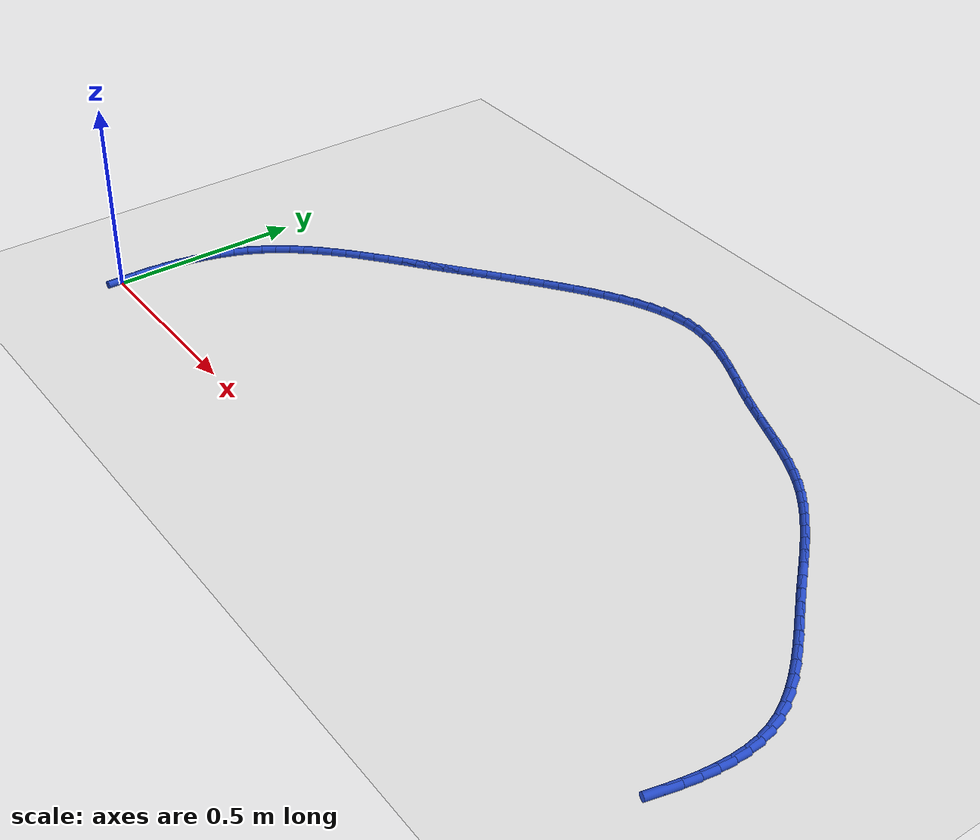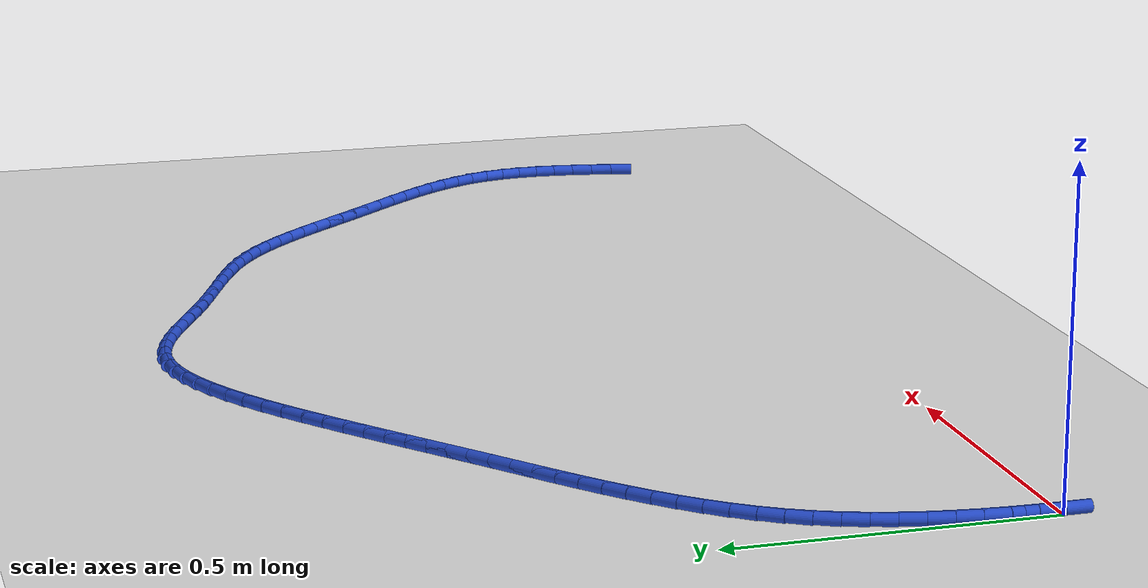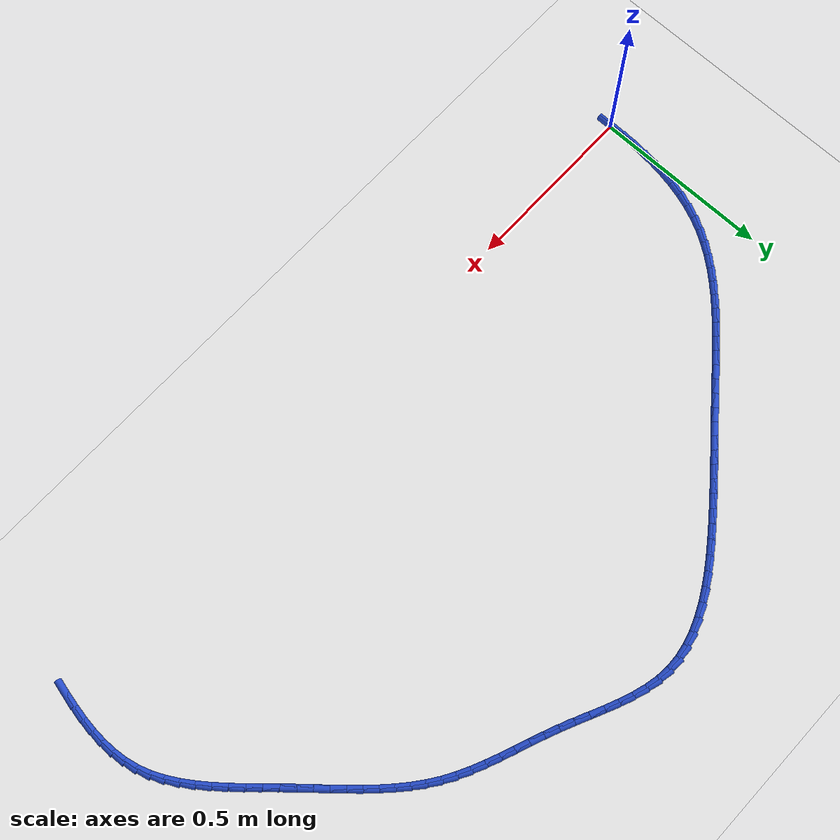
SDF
<sdf version="1.6">
 <world name="default">
  <model name="ground_plane">
   <static>1</static>
   <link name="link">
    <collision name="collision">
     <geometry><plane><normal>0 0 1</normal><size>100 100</size></plane></geometry>
     <surface><friction><ode><mu>100</mu><mu2>50</mu2></ode></friction></surface>
    </collision>
    <visual name="visual">
     <cast_shadows>0</cast_shadows>
     <geometry><plane><normal>0 0 1</normal><size>100 100</size></plane></geometry>
     <material>
      <script><uri>file://media/materials/scripts/gazebo.material</uri><name>Gazebo/WhiteGlow</name></script>
     </material>
    </visual>
   </link>
  </model>
  <model name="line">
   <link name="link_0">
    <pose>6.938893903907228e-18 -4.163336342344337e-17 0.01 0 1.57 -1.5676916101894538</pose>
    <collision name="collision">
     <geometry><cylinder><radius>0.01</radius><length>0.08</length></cylinder></geometry>
    </collision>
    <visual name="visual">
     <material>
      <script><name>Gazebo/Blue</name><uri>file://media/materials/scripts/gazebo.material</uri></script>
     </material>
     <geometry><cylinder><radius>0.01</radius><length>0.08</length></cylinder></geometry>
    </visual>
   </link>
   <link name="link_1">
    <pose>-0.0001240107535705233 0.03994256831536844 0.01 0 1.57 1.5407684090416927</pose>
    <collision name="collision">
     <geometry><cylinder><radius>0.01</radius><length>0.08</length></cylinder></geometry>
    </collision>
    <visual name="visual">
     <material>
      <script><name>Gazebo/Blue</name><uri>file://media/materials/scripts/gazebo.material</uri></script>
     </material>
     <geometry><cylinder><radius>0.01</radius><length>0.08</length></cylinder></geometry>
    </visual>
   </link>
   <link name="link_2">
    <pose>0.0010758056912176992 0.07988725638194097 0.01 0 1.57 1.5035129609177584</pose>
    <collision name="collision">
     <geometry><cylinder><radius>0.01</radius><length>0.08</length></cylinder></geometry>
    </collision>
    <visual name="visual">
     <material>
      <script><name>Gazebo/Blue</name><uri>file://media/materials/scripts/gazebo.material</uri></script>
     </material>
     <geometry><cylinder><radius>0.01</radius><length>0.08</length></cylinder></geometry>
    </visual>
   </link>
   <link name="link_3">
    <pose>0.0037561358894148238 0.11966357074974701 0.01 0 1.57 1.461752647181606</pose>
    <collision name="collision">
     <geometry><cylinder><radius>0.01</radius><length>0.08</length></cylinder></geometry>
    </collision>
    <visual name="visual">
     <material>
      <script><name>Gazebo/Blue</name><uri>file://media/materials/scripts/gazebo.material</uri></script>
     </material>
     <geometry><cylinder><radius>0.01</radius><length>0.08</length></cylinder></geometry>
    </visual>
   </link>
   <link name="link_4">
    <pose>0.008073666396071 0.15910101796881604 0.01 0 1.57 1.415074869230866</pose>
    <collision name="collision">
     <geometry><cylinder><radius>0.01</radius><length>0.08</length></cylinder></geometry>
    </collision>
    <visual name="visual">
     <material>
      <script><name>Gazebo/Blue</name><uri>file://media/materials/scripts/gazebo.material</uri></script>
     </material>
     <geometry><cylinder><radius>0.01</radius><length>0.08</length></cylinder></geometry>
    </visual>
   </link>
   <link name="link_5">
    <pose>0.014185083766236384 0.1980291045891775 0.01 0 1.57 1.3630564859032588</pose>
    <collision name="collision">
     <geometry><cylinder><radius>0.01</radius><length>0.08</length></cylinder></geometry>
    </collision>
    <visual name="visual">
     <material>
      <script><name>Gazebo/Blue</name><uri>file://media/materials/scripts/gazebo.material</uri></script>
     </material>
     <geometry><cylinder><radius>0.01</radius><length>0.08</length></cylinder></geometry>
    </visual>
   </link>
   <link name="link_6">
    <pose>0.022247074554961117 0.23627733716086088 0.01 0 1.57 1.3052953716062183</pose>
    <collision name="collision">
     <geometry><cylinder><radius>0.01</radius><length>0.08</length></cylinder></geometry>
    </collision>
    <visual name="visual">
     <material>
      <script><name>Gazebo/Blue</name><uri>file://media/materials/scripts/gazebo.material</uri></script>
     </material>
     <geometry><cylinder><radius>0.01</radius><length>0.08</length></cylinder></geometry>
    </visual>
   </link>
   <link name="link_7">
    <pose>0.03241632531729535 0.2736752222338956 0.01 0 1.57 1.2414569505692037</pose>
    <collision name="collision">
     <geometry><cylinder><radius>0.01</radius><length>0.08</length></cylinder></geometry>
    </collision>
    <visual name="visual">
     <material>
      <script><name>Gazebo/Blue</name><uri>file://media/materials/scripts/gazebo.material</uri></script>
     </material>
     <geometry><cylinder><radius>0.01</radius><length>0.08</length></cylinder></geometry>
    </visual>
   </link>
   <link name="link_8">
    <pose>0.04484952260828924 0.3100522663583111 0.01 0 1.57 1.1713377148081576</pose>
    <collision name="collision">
     <geometry><cylinder><radius>0.01</radius><length>0.08</length></cylinder></geometry>
    </collision>
    <visual name="visual">
     <material>
      <script><name>Gazebo/Blue</name><uri>file://media/materials/scripts/gazebo.material</uri></script>
     </material>
     <geometry><cylinder><radius>0.01</radius><length>0.08</length></cylinder></geometry>
    </visual>
   </link>
   <link name="link_9">
    <pose>0.05970335298299293 0.34523797608413687 0.01 0 1.57 1.095269995409736</pose>
    <collision name="collision">
     <geometry><cylinder><radius>0.01</radius><length>0.08</length></cylinder></geometry>
    </collision>
    <visual name="visual">
     <material>
      <script><name>Gazebo/Blue</name><uri>file://media/materials/scripts/gazebo.material</uri></script>
     </material>
     <geometry><cylinder><radius>0.01</radius><length>0.08</length></cylinder></geometry>
    </visual>
   </link>
   <link name="link_10">
    <pose>0.0771241366133853 0.37906882463720026 0.01 0 1.57 1.0200724143829145</pose>
    <collision name="collision">
     <geometry><cylinder><radius>0.01</radius><length>0.08</length></cylinder></geometry>
    </collision>
    <visual name="visual">
     <material>
      <script><name>Gazebo/Blue</name><uri>file://media/materials/scripts/gazebo.material</uri></script>
     </material>
     <geometry><cylinder><radius>0.01</radius><length>0.08</length></cylinder></geometry>
    </visual>
   </link>
   <link name="link_11">
    <pose>0.09705226196215008 0.41151968061665506 0.01 0 1.57 0.952246324544067</pose>
    <collision name="collision">
     <geometry><cylinder><radius>0.01</radius><length>0.08</length></cylinder></geometry>
    </collision>
    <visual name="visual">
     <material>
      <script><name>Gazebo/Blue</name><uri>file://media/materials/scripts/gazebo.material</uri></script>
     </material>
     <geometry><cylinder><radius>0.01</radius><length>0.08</length></cylinder></geometry>
    </visual>
   </link>
   <link name="link_12">
    <pose>0.11923876802224577 0.44269266398396984 0.01 0 1.57 0.8922600517610706</pose>
    <collision name="collision">
     <geometry><cylinder><radius>0.01</radius><length>0.08</length></cylinder></geometry>
    </collision>
    <visual name="visual">
     <material>
      <script><name>Gazebo/Blue</name><uri>file://media/materials/scripts/gazebo.material</uri></script>
     </material>
     <geometry><cylinder><radius>0.01</radius><length>0.08</length></cylinder></geometry>
    </visual>
   </link>
   <link name="link_13">
    <pose>0.14342765118021208 0.4726946276489668 0.01 0 1.57 0.8400615878281157</pose>
    <collision name="collision">
     <geometry><cylinder><radius>0.01</radius><length>0.08</length></cylinder></geometry>
    </collision>
    <visual name="visual">
     <material>
      <script><name>Gazebo/Blue</name><uri>file://media/materials/scripts/gazebo.material</uri></script>
     </material>
     <geometry><cylinder><radius>0.01</radius><length>0.08</length></cylinder></geometry>
    </visual>
   </link>
   <link name="link_14">
    <pose>0.16936290782258875 0.501632424521469 0.01 0 1.57 0.7954121841297949</pose>
    <collision name="collision">
     <geometry><cylinder><radius>0.01</radius><length>0.08</length></cylinder></geometry>
    </collision>
    <visual name="visual">
     <material>
      <script><name>Gazebo/Blue</name><uri>file://media/materials/scripts/gazebo.material</uri></script>
     </material>
     <geometry><cylinder><radius>0.01</radius><length>0.08</length></cylinder></geometry>
    </visual>
   </link>
   <link name="link_15">
    <pose>0.19678853433591553 0.5296129075112985 0.01 0 1.57 0.757981296980702</pose>
    <collision name="collision">
     <geometry><cylinder><radius>0.01</radius><length>0.08</length></cylinder></geometry>
    </collision>
    <visual name="visual">
     <material>
      <script><name>Gazebo/Blue</name><uri>file://media/materials/scripts/gazebo.material</uri></script>
     </material>
     <geometry><cylinder><radius>0.01</radius><length>0.08</length></cylinder></geometry>
    </visual>
   </link>
   <link name="link_16">
    <pose>0.22544852710673227 0.5567429295282782 0.01 0 1.57 0.727418510321917</pose>
    <collision name="collision">
     <geometry><cylinder><radius>0.01</radius><length>0.08</length></cylinder></geometry>
    </collision>
    <visual name="visual">
     <material>
      <script><name>Gazebo/Blue</name><uri>file://media/materials/scripts/gazebo.material</uri></script>
     </material>
     <geometry><cylinder><radius>0.01</radius><length>0.08</length></cylinder></geometry>
    </visual>
   </link>
   <link name="link_17">
    <pose>0.25508688252157874 0.5831293434822304 0.01 0 1.57 0.7034040983549662</pose>
    <collision name="collision">
     <geometry><cylinder><radius>0.01</radius><length>0.08</length></cylinder></geometry>
    </collision>
    <visual name="visual">
     <material>
      <script><name>Gazebo/Blue</name><uri>file://media/materials/scripts/gazebo.material</uri></script>
     </material>
     <geometry><cylinder><radius>0.01</radius><length>0.08</length></cylinder></geometry>
    </visual>
   </link>
   <link name="link_18">
    <pose>0.28544759696699434 0.6088790022829775 0.01 0 1.57 0.68568303896378</pose>
    <collision name="collision">
     <geometry><cylinder><radius>0.01</radius><length>0.08</length></cylinder></geometry>
    </collision>
    <visual name="visual">
     <material>
      <script><name>Gazebo/Blue</name><uri>file://media/materials/scripts/gazebo.material</uri></script>
     </material>
     <geometry><cylinder><radius>0.01</radius><length>0.08</length></cylinder></geometry>
    </visual>
   </link>
   <link name="link_19">
    <pose>0.31627466682951927 0.6340987588403424 0.01 0 1.57 0.674087767909182</pose>
    <collision name="collision">
     <geometry><cylinder><radius>0.01</radius><length>0.08</length></cylinder></geometry>
    </collision>
    <visual name="visual">
     <material>
      <script><name>Gazebo/Blue</name><uri>file://media/materials/scripts/gazebo.material</uri></script>
     </material>
     <geometry><cylinder><radius>0.01</radius><length>0.08</length></cylinder></geometry>
    </visual>
   </link>
   <link name="link_20">
    <pose>0.34731208849569317 0.6588954660641475 0.01 0 1.57 0.6685542135678278</pose>
    <collision name="collision">
     <geometry><cylinder><radius>0.01</radius><length>0.08</length></cylinder></geometry>
    </collision>
    <visual name="visual">
     <material>
      <script><name>Gazebo/Blue</name><uri>file://media/materials/scripts/gazebo.material</uri></script>
     </material>
     <geometry><cylinder><radius>0.01</radius><length>0.08</length></cylinder></geometry>
    </visual>
   </link>
   <link name="link_21">
    <pose>0.3783038583520557 0.6833759768642154 0.01 0 1.57 0.6691236972101293</pose>
    <collision name="collision">
     <geometry><cylinder><radius>0.01</radius><length>0.08</length></cylinder></geometry>
    </collision>
    <visual name="visual">
     <material>
      <script><name>Gazebo/Blue</name><uri>file://media/materials/scripts/gazebo.material</uri></script>
     </material>
     <geometry><cylinder><radius>0.01</radius><length>0.08</length></cylinder></geometry>
    </visual>
   </link>
   <link name="link_22">
    <pose>0.4089945331427164 0.7076470474561677 0.01 0 1.57 0.673648050897429</pose>
    <collision name="collision">
     <geometry><cylinder><radius>0.01</radius><length>0.08</length></cylinder></geometry>
    </collision>
    <visual name="visual">
     <material>
      <script><name>Gazebo/Blue</name><uri>file://media/materials/scripts/gazebo.material</uri></script>
     </material>
     <geometry><cylinder><radius>0.01</radius><length>0.08</length></cylinder></geometry>
    </visual>
   </link>
   <link name="link_23">
    <pose>0.43924717477919306 0.7317949850369222 0.01 0 1.57 0.677016995341679</pose>
    <collision name="collision">
     <geometry><cylinder><radius>0.01</radius><length>0.08</length></cylinder></geometry>
    </collision>
    <visual name="visual">
     <material>
      <script><name>Gazebo/Blue</name><uri>file://media/materials/scripts/gazebo.material</uri></script>
     </material>
     <geometry><cylinder><radius>0.01</radius><length>0.08</length></cylinder></geometry>
    </visual>
   </link>
   <link name="link_24">
    <pose>0.46918910326626423 0.7558604969463605 0.01 0 1.57 0.6784589051195975</pose>
    <collision name="collision">
     <geometry><cylinder><radius>0.01</radius><length>0.08</length></cylinder></geometry>
    </collision>
    <visual name="visual">
     <material>
      <script><name>Gazebo/Blue</name><uri>file://media/materials/scripts/gazebo.material</uri></script>
     </material>
     <geometry><cylinder><radius>0.01</radius><length>0.08</length></cylinder></geometry>
    </visual>
   </link>
   <link name="link_25">
    <pose>0.49898337237274504 0.7798781243762949 0.01 0 1.57 0.6779350442786455</pose>
    <collision name="collision">
     <geometry><cylinder><radius>0.01</radius><length>0.08</length></cylinder></geometry>
    </collision>
    <visual name="visual">
     <material>
      <script><name>Gazebo/Blue</name><uri>file://media/materials/scripts/gazebo.material</uri></script>
     </material>
     <geometry><cylinder><radius>0.01</radius><length>0.08</length></cylinder></geometry>
    </visual>
   </link>
   <link name="link_26">
    <pose>0.5287930358674504 0.8038824085185382 0.01 0 1.57 0.6754520535355876</pose>
    <collision name="collision">
     <geometry><cylinder><radius>0.01</radius><length>0.08</length></cylinder></geometry>
    </collision>
    <visual name="visual">
     <material>
      <script><name>Gazebo/Blue</name><uri>file://media/materials/scripts/gazebo.material</uri></script>
     </material>
     <geometry><cylinder><radius>0.01</radius><length>0.08</length></cylinder></geometry>
    </visual>
   </link>
   <link name="link_27">
    <pose>0.5587811475191954 0.8279078905649029 0.01 0 1.57 0.6710617325631127</pose>
    <collision name="collision">
     <geometry><cylinder><radius>0.01</radius><length>0.08</length></cylinder></geometry>
    </collision>
    <visual name="visual">
     <material>
      <script><name>Gazebo/Blue</name><uri>file://media/materials/scripts/gazebo.material</uri></script>
     </material>
     <geometry><cylinder><radius>0.01</radius><length>0.08</length></cylinder></geometry>
    </visual>
   </link>
   <link name="link_28">
    <pose>0.5891107610967954 0.8519891117072016 0.01 0 1.57 0.6648584566163249</pose>
    <collision name="collision">
     <geometry><cylinder><radius>0.01</radius><length>0.08</length></cylinder></geometry>
    </collision>
    <visual name="visual">
     <material>
      <script><name>Gazebo/Blue</name><uri>file://media/materials/scripts/gazebo.material</uri></script>
     </material>
     <geometry><cylinder><radius>0.01</radius><length>0.08</length></cylinder></geometry>
    </visual>
   </link>
   <link name="link_29">
    <pose>0.6199449303690652 0.8761606131372471 0.01 0 1.57 0.6569744422796842</pose>
    <collision name="collision">
     <geometry><cylinder><radius>0.01</radius><length>0.08</length></cylinder></geometry>
    </collision>
    <visual name="visual">
     <material>
      <script><name>Gazebo/Blue</name><uri>file://media/materials/scripts/gazebo.material</uri></script>
     </material>
     <geometry><cylinder><radius>0.01</radius><length>0.08</length></cylinder></geometry>
    </visual>
   </link>
   <link name="link_30">
    <pose>0.6514467091048195 0.9004569360468514 0.01 0 1.57 0.6474209578376263</pose>
    <collision name="collision">
     <geometry><cylinder><radius>0.01</radius><length>0.08</length></cylinder></geometry>
    </collision>
    <visual name="visual">
     <material>
      <script><name>Gazebo/Blue</name><uri>file://media/materials/scripts/gazebo.material</uri></script>
     </material>
     <geometry><cylinder><radius>0.01</radius><length>0.08</length></cylinder></geometry>
    </visual>
   </link>
   <link name="link_31">
    <pose>0.6837731962474867 0.9249003783235316 0.01 0 1.57 0.6331195395096945</pose>
    <collision name="collision">
     <geometry><cylinder><radius>0.01</radius><length>0.08</length></cylinder></geometry>
    </collision>
    <visual name="visual">
     <material>
      <script><name>Gazebo/Blue</name><uri>file://media/materials/scripts/gazebo.material</uri></script>
     </material>
     <geometry><cylinder><radius>0.01</radius><length>0.08</length></cylinder></geometry>
    </visual>
   </link>
   <link name="link_32">
    <pose>0.7169545861808617 0.9492523181738578 0.01 0 1.57 0.6109323411636277</pose>
    <collision name="collision">
     <geometry><cylinder><radius>0.01</radius><length>0.08</length></cylinder></geometry>
    </collision>
    <visual name="visual">
     <material>
      <script><name>Gazebo/Blue</name><uri>file://media/materials/scripts/gazebo.material</uri></script>
     </material>
     <geometry><cylinder><radius>0.01</radius><length>0.08</length></cylinder></geometry>
    </visual>
   </link>
   <link name="link_33">
    <pose>0.7508995162889793 0.9730242088711587 0.01 0 1.57 0.580331755530792</pose>
    <collision name="collision">
     <geometry><cylinder><radius>0.01</radius><length>0.08</length></cylinder></geometry>
    </collision>
    <visual name="visual">
     <material>
      <script><name>Gazebo/Blue</name><uri>file://media/materials/scripts/gazebo.material</uri></script>
     </material>
     <geometry><cylinder><radius>0.01</radius><length>0.08</length></cylinder></geometry>
    </visual>
   </link>
   <link name="link_34">
    <pose>0.7855117392639189 0.9957174606117435 0.01 0 1.57 0.5405461772761361</pose>
    <collision name="collision">
     <geometry><cylinder><radius>0.01</radius><length>0.08</length></cylinder></geometry>
    </collision>
    <visual name="visual">
     <material>
      <script><name>Gazebo/Blue</name><uri>file://media/materials/scripts/gazebo.material</uri></script>
     </material>
     <geometry><cylinder><radius>0.01</radius><length>0.08</length></cylinder></geometry>
    </visual>
   </link>
   <link name="link_35">
    <pose>0.820695007797759 1.0168334835919195 0.01 0 1.57 0.4904499565831554</pose>
    <collision name="collision">
     <geometry><cylinder><radius>0.01</radius><length>0.08</length></cylinder></geometry>
    </collision>
    <visual name="visual">
     <material>
      <script><name>Gazebo/Blue</name><uri>file://media/materials/scripts/gazebo.material</uri></script>
     </material>
     <geometry><cylinder><radius>0.01</radius><length>0.08</length></cylinder></geometry>
    </visual>
   </link>
   <link name="link_36">
    <pose>0.8563530745825789 1.0358736880079955 0.01 0 1.57 0.42859240694661394</pose>
    <collision name="collision">
     <geometry><cylinder><radius>0.01</radius><length>0.08</length></cylinder></geometry>
    </collision>
    <visual name="visual">
     <material>
      <script><name>Gazebo/Blue</name><uri>file://media/materials/scripts/gazebo.material</uri></script>
     </material>
     <geometry><cylinder><radius>0.01</radius><length>0.08</length></cylinder></geometry>
    </visual>
   </link>
   <link name="link_37">
    <pose>0.8923896923104576 1.05233948405628 0.01 0 1.57 0.35328473260305254</pose>
    <collision name="collision">
     <geometry><cylinder><radius>0.01</radius><length>0.08</length></cylinder></geometry>
    </collision>
    <visual name="visual">
     <material>
      <script><name>Gazebo/Blue</name><uri>file://media/materials/scripts/gazebo.material</uri></script>
     </material>
     <geometry><cylinder><radius>0.01</radius><length>0.08</length></cylinder></geometry>
    </visual>
   </link>
   <link name="link_38">
    <pose>0.9287086136734736 1.0657322819330808 0.01 0 1.57 0.2628145662707853</pose>
    <collision name="collision">
     <geometry><cylinder><radius>0.01</radius><length>0.08</length></cylinder></geometry>
    </collision>
    <visual name="visual">
     <material>
      <script><name>Gazebo/Blue</name><uri>file://media/materials/scripts/gazebo.material</uri></script>
     </material>
     <geometry><cylinder><radius>0.01</radius><length>0.08</length></cylinder></geometry>
    </visual>
   </link>
   <link name="link_39">
    <pose>0.9652135913637067 1.0755534918347063 0.01 0 1.57 0.15587947604825492</pose>
    <collision name="collision">
     <geometry><cylinder><radius>0.01</radius><length>0.08</length></cylinder></geometry>
    </collision>
    <visual name="visual">
     <material>
      <script><name>Gazebo/Blue</name><uri>file://media/materials/scripts/gazebo.material</uri></script>
     </material>
     <geometry><cylinder><radius>0.01</radius><length>0.08</length></cylinder></geometry>
    </visual>
   </link>
   <link name="link_40">
    <pose>1.0018083780732354 1.0813045239574648 0.01 0 1.57 0.032301357666598744</pose>
    <collision name="collision">
     <geometry><cylinder><radius>0.01</radius><length>0.08</length></cylinder></geometry>
    </collision>
    <visual name="visual">
     <material>
      <script><name>Gazebo/Blue</name><uri>file://media/materials/scripts/gazebo.material</uri></script>
     </material>
     <geometry><cylinder><radius>0.01</radius><length>0.08</length></cylinder></geometry>
    </visual>
   </link>
   <link name="link_41">
    <pose>1.0383967264941383 1.0824867884976643 0.01 0 1.57 -0.10108205714212606</pose>
    <collision name="collision">
     <geometry><cylinder><radius>0.01</radius><length>0.08</length></cylinder></geometry>
    </collision>
    <visual name="visual">
     <material>
      <script><name>Gazebo/Blue</name><uri>file://media/materials/scripts/gazebo.material</uri></script>
     </material>
     <geometry><cylinder><radius>0.01</radius><length>0.08</length></cylinder></geometry>
    </visual>
   </link>
   <link name="link_42">
    <pose>1.0749014130056576 1.078784200592612 0.01 0 1.57 -0.2168176558800977</pose>
    <collision name="collision">
     <geometry><cylinder><radius>0.01</radius><length>0.08</length></cylinder></geometry>
    </collision>
    <visual name="visual">
     <material>
      <script><name>Gazebo/Blue</name><uri>file://media/materials/scripts/gazebo.material</uri></script>
     </material>
     <geometry><cylinder><radius>0.01</radius><length>0.08</length></cylinder></geometry>
    </visual>
   </link>
   <link name="link_43">
    <pose>1.11133668697493 1.070758227250425 0.01 0 1.57 -0.3065613332785043</pose>
    <collision name="collision">
     <geometry><cylinder><radius>0.01</radius><length>0.08</length></cylinder></geometry>
    </collision>
    <visual name="visual">
     <material>
      <script><name>Gazebo/Blue</name><uri>file://media/materials/scripts/gazebo.material</uri></script>
     </material>
     <geometry><cylinder><radius>0.01</radius><length>0.08</length></cylinder></geometry>
    </visual>
   </link>
   <link name="link_44">
    <pose>1.1477442572084502 1.0592337693402194 0.01 0 1.57 -0.37170293703911716</pose>
    <collision name="collision">
     <geometry><cylinder><radius>0.01</radius><length>0.08</length></cylinder></geometry>
    </collision>
    <visual name="visual">
     <material>
      <script><name>Gazebo/Blue</name><uri>file://media/materials/scripts/gazebo.material</uri></script>
     </material>
     <geometry><cylinder><radius>0.01</radius><length>0.08</length></cylinder></geometry>
    </visual>
   </link>
   <link name="link_45">
    <pose>1.1841658377890667 1.045035778350141 0.01 0 1.57 -0.41442782550386414</pose>
    <collision name="collision">
     <geometry><cylinder><radius>0.01</radius><length>0.08</length></cylinder></geometry>
    </collision>
    <visual name="visual">
     <material>
      <script><name>Gazebo/Blue</name><uri>file://media/materials/scripts/gazebo.material</uri></script>
     </material>
     <geometry><cylinder><radius>0.01</radius><length>0.08</length></cylinder></geometry>
    </visual>
   </link>
   <link name="link_46">
    <pose>1.2206431427996258 1.028989205768336 0.01 0 1.57 -0.43667181638576197</pose>
    <collision name="collision">
     <geometry><cylinder><radius>0.01</radius><length>0.08</length></cylinder></geometry>
    </collision>
    <visual name="visual">
     <material>
      <script><name>Gazebo/Blue</name><uri>file://media/materials/scripts/gazebo.material</uri></script>
     </material>
     <geometry><cylinder><radius>0.01</radius><length>0.08</length></cylinder></geometry>
    </visual>
   </link>
   <link name="link_47">
    <pose>1.2572178863229766 1.0119190030829506 0.01 0 1.57 -0.43965867992340646</pose>
    <collision name="collision">
     <geometry><cylinder><radius>0.01</radius><length>0.08</length></cylinder></geometry>
    </collision>
    <visual name="visual">
     <material>
      <script><name>Gazebo/Blue</name><uri>file://media/materials/scripts/gazebo.material</uri></script>
     </material>
     <geometry><cylinder><radius>0.01</radius><length>0.08</length></cylinder></geometry>
    </visual>
   </link>
   <link name="link_48">
    <pose>1.2939317824419656 0.9946501217821306 0.01 0 1.57 -0.42378051686365903</pose>
    <collision name="collision">
     <geometry><cylinder><radius>0.01</radius><length>0.08</length></cylinder></geometry>
    </collision>
    <visual name="visual">
     <material>
      <script><name>Gazebo/Blue</name><uri>file://media/materials/scripts/gazebo.material</uri></script>
     </material>
     <geometry><cylinder><radius>0.01</radius><length>0.08</length></cylinder></geometry>
    </visual>
   </link>
   <link name="link_49">
    <pose>1.3308263294866667 0.9780064496123787 0.01 0 1.57 -0.3968934051463443</pose>
    <collision name="collision">
     <geometry><cylinder><radius>0.01</radius><length>0.08</length></cylinder></geometry>
    </collision>
    <visual name="visual">
     <material>
      <script><name>Gazebo/Blue</name><uri>file://media/materials/scripts/gazebo.material</uri></script>
     </material>
     <geometry><cylinder><radius>0.01</radius><length>0.08</length></cylinder></geometry>
    </visual>
   </link>
   <link name="link_50">
    <pose>1.3678752864865296 0.9624778943046117 0.01 0 1.57 -0.378765844302604</pose>
    <collision name="collision">
     <geometry><cylinder><radius>0.01</radius><length>0.08</length></cylinder></geometry>
    </collision>
    <visual name="visual">
     <material>
      <script><name>Gazebo/Blue</name><uri>file://media/materials/scripts/gazebo.material</uri></script>
     </material>
     <geometry><cylinder><radius>0.01</radius><length>0.08</length></cylinder></geometry>
    </visual>
   </link>
   <link name="link_51">
    <pose>1.4048887014416773 0.9477472071588104 0.01 0 1.57 -0.37260547723734655</pose>
    <collision name="collision">
     <geometry><cylinder><radius>0.01</radius><length>0.08</length></cylinder></geometry>
    </collision>
    <visual name="visual">
     <material>
      <script><name>Gazebo/Blue</name><uri>file://media/materials/scripts/gazebo.material</uri></script>
     </material>
     <geometry><cylinder><radius>0.01</radius><length>0.08</length></cylinder></geometry>
    </visual>
   </link>
   <link name="link_52">
    <pose>1.4416523811825135 0.9333776214674365 0.01 0 1.57 -0.3787322960485489</pose>
    <collision name="collision">
     <geometry><cylinder><radius>0.01</radius><length>0.08</length></cylinder></geometry>
    </collision>
    <visual name="visual">
     <material>
      <script><name>Gazebo/Blue</name><uri>file://media/materials/scripts/gazebo.material</uri></script>
     </material>
     <geometry><cylinder><radius>0.01</radius><length>0.08</length></cylinder></geometry>
    </visual>
   </link>
   <link name="link_53">
    <pose>1.4779521325394394 0.9189323705229513 0.01 0 1.57 -0.39754681492962307</pose>
    <collision name="collision">
     <geometry><cylinder><radius>0.01</radius><length>0.08</length></cylinder></geometry>
    </collision>
    <visual name="visual">
     <material>
      <script><name>Gazebo/Blue</name><uri>file://media/materials/scripts/gazebo.material</uri></script>
     </material>
     <geometry><cylinder><radius>0.01</radius><length>0.08</length></cylinder></geometry>
    </visual>
   </link>
   <link name="link_54">
    <pose>1.5135737623428582 0.9039746876178164 0.01 0 1.57 -0.4295071344164393</pose>
    <collision name="collision">
     <geometry><cylinder><radius>0.01</radius><length>0.08</length></cylinder></geometry>
    </collision>
    <visual name="visual">
     <material>
      <script><name>Gazebo/Blue</name><uri>file://media/materials/scripts/gazebo.material</uri></script>
     </material>
     <geometry><cylinder><radius>0.01</radius><length>0.08</length></cylinder></geometry>
    </visual>
   </link>
   <link name="link_55">
    <pose>1.5483030774231727 0.8880678060444939 0.01 0 1.57 -0.4750370412200318</pose>
    <collision name="collision">
     <geometry><cylinder><radius>0.01</radius><length>0.08</length></cylinder></geometry>
    </collision>
    <visual name="visual">
     <material>
      <script><name>Gazebo/Blue</name><uri>file://media/materials/scripts/gazebo.material</uri></script>
     </material>
     <geometry><cylinder><radius>0.01</radius><length>0.08</length></cylinder></geometry>
    </visual>
   </link>
   <link name="link_56">
    <pose>1.5819258846107855 0.8707749590954453 0.01 0 1.57 -0.5343497594100991</pose>
    <collision name="collision">
     <geometry><cylinder><radius>0.01</radius><length>0.08</length></cylinder></geometry>
    </collision>
    <visual name="visual">
     <material>
      <script><name>Gazebo/Blue</name><uri>file://media/materials/scripts/gazebo.material</uri></script>
     </material>
     <geometry><cylinder><radius>0.01</radius><length>0.08</length></cylinder></geometry>
    </visual>
   </link>
   <link name="link_57">
    <pose>1.6142279907360977 0.8516593800631319 0.01 0 1.57 -0.6037393953036544</pose>
    <collision name="collision">
     <geometry><cylinder><radius>0.01</radius><length>0.08</length></cylinder></geometry>
    </collision>
    <visual name="visual">
     <material>
      <script><name>Gazebo/Blue</name><uri>file://media/materials/scripts/gazebo.material</uri></script>
     </material>
     <geometry><cylinder><radius>0.01</radius><length>0.08</length></cylinder></geometry>
    </visual>
   </link>
   <link name="link_58">
    <pose>1.645065242448299 0.8303927621386604 0.01 0 1.57 -0.6678727166397935</pose>
    <collision name="collision">
     <geometry><cylinder><radius>0.01</radius><length>0.08</length></cylinder></geometry>
    </collision>
    <visual name="visual">
     <material>
      <script><name>Gazebo/Blue</name><uri>file://media/materials/scripts/gazebo.material</uri></script>
     </material>
     <geometry><cylinder><radius>0.01</radius><length>0.08</length></cylinder></geometry>
    </visual>
   </link>
   <link name="link_59">
    <pose>1.6745890348172443 0.8071044689112994 0.01 0 1.57 -0.7223083172210687</pose>
    <collision name="collision">
     <geometry><cylinder><radius>0.01</radius><length>0.08</length></cylinder></geometry>
    </collision>
    <visual name="visual">
     <material>
      <script><name>Gazebo/Blue</name><uri>file://media/materials/scripts/gazebo.material</uri></script>
     </material>
     <geometry><cylinder><radius>0.01</radius><length>0.08</length></cylinder></geometry>
    </visual>
   </link>
   <link name="link_60">
    <pose>1.7030287063058787 0.7820445629192994 0.01 0 1.57 -0.7668752382026103</pose>
    <collision name="collision">
     <geometry><cylinder><radius>0.01</radius><length>0.08</length></cylinder></geometry>
    </collision>
    <visual name="visual">
     <material>
      <script><name>Gazebo/Blue</name><uri>file://media/materials/scripts/gazebo.material</uri></script>
     </material>
     <geometry><cylinder><radius>0.01</radius><length>0.08</length></cylinder></geometry>
    </visual>
   </link>
   <link name="link_61">
    <pose>1.730613595795561 0.7554631073488457 0.01 0 1.57 -0.8016976987750488</pose>
    <collision name="collision">
     <geometry><cylinder><radius>0.01</radius><length>0.08</length></cylinder></geometry>
    </collision>
    <visual name="visual">
     <material>
      <script><name>Gazebo/Blue</name><uri>file://media/materials/scripts/gazebo.material</uri></script>
     </material>
     <geometry><cylinder><radius>0.01</radius><length>0.08</length></cylinder></geometry>
    </visual>
   </link>
   <link name="link_62">
    <pose>1.7575730421676499 0.7276101653861247 0.01 0 1.57 -0.8270608844257014</pose>
    <collision name="collision">
     <geometry><cylinder><radius>0.01</radius><length>0.08</length></cylinder></geometry>
    </collision>
    <visual name="visual">
     <material>
      <script><name>Gazebo/Blue</name><uri>file://media/materials/scripts/gazebo.material</uri></script>
     </material>
     <geometry><cylinder><radius>0.01</radius><length>0.08</length></cylinder></geometry>
    </visual>
   </link>
   <link name="link_63">
    <pose>1.7841363843035047 0.6987358002173216 0.01 0 1.57 -0.8433100471853017</pose>
    <collision name="collision">
     <geometry><cylinder><radius>0.01</radius><length>0.08</length></cylinder></geometry>
    </collision>
    <visual name="visual">
     <material>
      <script><name>Gazebo/Blue</name><uri>file://media/materials/scripts/gazebo.material</uri></script>
     </material>
     <geometry><cylinder><radius>0.01</radius><length>0.08</length></cylinder></geometry>
    </visual>
   </link>
   <link name="link_64">
    <pose>1.8105329610844838 0.6690900750286224 0.01 0 1.57 -0.8507846420287272</pose>
    <collision name="collision">
     <geometry><cylinder><radius>0.01</radius><length>0.08</length></cylinder></geometry>
    </collision>
    <visual name="visual">
     <material>
      <script><name>Gazebo/Blue</name><uri>file://media/materials/scripts/gazebo.material</uri></script>
     </material>
     <geometry><cylinder><radius>0.01</radius><length>0.08</length></cylinder></geometry>
    </visual>
   </link>
   <link name="link_65">
    <pose>1.8369921113919465 0.638923053006213 0.01 0 1.57 -0.8497825057222906</pose>
    <collision name="collision">
     <geometry><cylinder><radius>0.01</radius><length>0.08</length></cylinder></geometry>
    </collision>
    <visual name="visual">
     <material>
      <script><name>Gazebo/Blue</name><uri>file://media/materials/scripts/gazebo.material</uri></script>
     </material>
     <geometry><cylinder><radius>0.01</radius><length>0.08</length></cylinder></geometry>
    </visual>
   </link>
   <link name="link_66">
    <pose>1.863743174107252 0.6084847973362784 0.01 0 1.57 -0.8410196187090825</pose>
    <collision name="collision">
     <geometry><cylinder><radius>0.01</radius><length>0.08</length></cylinder></geometry>
    </collision>
    <visual name="visual">
     <material>
      <script><name>Gazebo/Blue</name><uri>file://media/materials/scripts/gazebo.material</uri></script>
     </material>
     <geometry><cylinder><radius>0.01</radius><length>0.08</length></cylinder></geometry>
    </visual>
   </link>
   <link name="link_67">
    <pose>1.8909973083321887 0.5780167567222744 0.01 0 1.57 -0.8341662579337321</pose>
    <collision name="collision">
     <geometry><cylinder><radius>0.01</radius><length>0.08</length></cylinder></geometry>
    </collision>
    <visual name="visual">
     <material>
      <script><name>Gazebo/Blue</name><uri>file://media/materials/scripts/gazebo.material</uri></script>
     </material>
     <geometry><cylinder><radius>0.01</radius><length>0.08</length></cylinder></geometry>
    </visual>
   </link>
   <link name="link_68">
    <pose>1.918596390025168 0.5475853951683565 0.01 0 1.57 -0.8379853898247611</pose>
    <collision name="collision">
     <geometry><cylinder><radius>0.01</radius><length>0.08</length></cylinder></geometry>
    </collision>
    <visual name="visual">
     <material>
      <script><name>Gazebo/Blue</name><uri>file://media/materials/scripts/gazebo.material</uri></script>
     </material>
     <geometry><cylinder><radius>0.01</radius><length>0.08</length></cylinder></geometry>
    </visual>
   </link>
   <link name="link_69">
    <pose>1.9460382709802724 0.5170941609385215 0.01 0 1.57 -0.8529414000449392</pose>
    <collision name="collision">
     <geometry><cylinder><radius>0.01</radius><length>0.08</length></cylinder></geometry>
    </collision>
    <visual name="visual">
     <material>
      <script><name>Gazebo/Blue</name><uri>file://media/materials/scripts/gazebo.material</uri></script>
     </material>
     <geometry><cylinder><radius>0.01</radius><length>0.08</length></cylinder></geometry>
    </visual>
   </link>
   <link name="link_70">
    <pose>1.9728076829589825 0.4864402853735151 0.01 0 1.57 -0.8795880110072843</pose>
    <collision name="collision">
     <geometry><cylinder><radius>0.01</radius><length>0.08</length></cylinder></geometry>
    </collision>
    <visual name="visual">
     <material>
      <script><name>Gazebo/Blue</name><uri>file://media/materials/scripts/gazebo.material</uri></script>
     </material>
     <geometry><cylinder><radius>0.01</radius><length>0.08</length></cylinder></geometry>
    </visual>
   </link>
   <link name="link_71">
    <pose>1.9983893577227787 0.45552099981408367 0.01 0 1.57 -0.9188990571414987</pose>
    <collision name="collision">
     <geometry><cylinder><radius>0.01</radius><length>0.08</length></cylinder></geometry>
    </collision>
    <visual name="visual">
     <material>
      <script><name>Gazebo/Blue</name><uri>file://media/materials/scripts/gazebo.material</uri></script>
     </material>
     <geometry><cylinder><radius>0.01</radius><length>0.08</length></cylinder></geometry>
    </visual>
   </link>
   <link name="link_72">
    <pose>2.022268027033141 0.42423353560097415 0.01 0 1.57 -0.9722284180211227</pose>
    <collision name="collision">
     <geometry><cylinder><radius>0.01</radius><length>0.08</length></cylinder></geometry>
    </collision>
    <visual name="visual">
     <material>
      <script><name>Gazebo/Blue</name><uri>file://media/materials/scripts/gazebo.material</uri></script>
     </material>
     <geometry><cylinder><radius>0.01</radius><length>0.08</length></cylinder></geometry>
    </visual>
   </link>
   <link name="link_73">
    <pose>2.0439284226515504 0.39247512407493274 0.01 0 1.57 -1.04118990578017</pose>
    <collision name="collision">
     <geometry><cylinder><radius>0.01</radius><length>0.08</length></cylinder></geometry>
    </collision>
    <visual name="visual">
     <material>
      <script><name>Gazebo/Blue</name><uri>file://media/materials/scripts/gazebo.material</uri></script>
     </material>
     <geometry><cylinder><radius>0.01</radius><length>0.08</length></cylinder></geometry>
    </visual>
   </link>
   <link name="link_74">
    <pose>2.0628552763394854 0.3601429965767052 0.01 0 1.57 -1.1273738765443044</pose>
    <collision name="collision">
     <geometry><cylinder><radius>0.01</radius><length>0.08</length></cylinder></geometry>
    </collision>
    <visual name="visual">
     <material>
      <script><name>Gazebo/Blue</name><uri>file://media/materials/scripts/gazebo.material</uri></script>
     </material>
     <geometry><cylinder><radius>0.01</radius><length>0.08</length></cylinder></geometry>
    </visual>
   </link>
   <link name="link_75">
    <pose>2.078533319858429 0.32713438444703874 0.01 0 1.57 -1.2317824669100814</pose>
    <collision name="collision">
     <geometry><cylinder><radius>0.01</radius><length>0.08</length></cylinder></geometry>
    </collision>
    <visual name="visual">
     <material>
      <script><name>Gazebo/Blue</name><uri>file://media/materials/scripts/gazebo.material</uri></script>
     </material>
     <geometry><cylinder><radius>0.01</radius><length>0.08</length></cylinder></geometry>
    </visual>
   </link>
   <link name="link_76">
    <pose>2.090447825521905 0.29334661143787305 0.01 0 1.57 -1.3472417434244817</pose>
    <collision name="collision">
     <geometry><cylinder><radius>0.01</radius><length>0.08</length></cylinder></geometry>
    </collision>
    <visual name="visual">
     <material>
      <script><name>Gazebo/Blue</name><uri>file://media/materials/scripts/gazebo.material</uri></script>
     </material>
     <geometry><cylinder><radius>0.01</radius><length>0.08</length></cylinder></geometry>
    </visual>
   </link>
   <link name="link_77">
    <pose>2.098320919666069 0.2587174931707878 0.01 0 1.57 -1.4538908434314441</pose>
    <collision name="collision">
     <geometry><cylinder><radius>0.01</radius><length>0.08</length></cylinder></geometry>
    </collision>
    <visual name="visual">
     <material>
      <script><name>Gazebo/Blue</name><uri>file://media/materials/scripts/gazebo.material</uri></script>
     </material>
     <geometry><cylinder><radius>0.01</radius><length>0.08</length></cylinder></geometry>
    </visual>
   </link>
   <link name="link_78">
    <pose>2.1024817221541676 0.22328861510204226 0.01 0 1.57 -1.54665165139785</pose>
    <collision name="collision">
     <geometry><cylinder><radius>0.01</radius><length>0.08</length></cylinder></geometry>
    </collision>
    <visual name="visual">
     <material>
      <script><name>Gazebo/Blue</name><uri>file://media/materials/scripts/gazebo.material</uri></script>
     </material>
     <geometry><cylinder><radius>0.01</radius><length>0.08</length></cylinder></geometry>
    </visual>
   </link>
   <link name="link_79">
    <pose>2.103355220820193 0.1871179519952454 0.01 0 1.57 1.5168845503592499</pose>
    <collision name="collision">
     <geometry><cylinder><radius>0.01</radius><length>0.08</length></cylinder></geometry>
    </collision>
    <visual name="visual">
     <material>
      <script><name>Gazebo/Blue</name><uri>file://media/materials/scripts/gazebo.material</uri></script>
     </material>
     <geometry><cylinder><radius>0.01</radius><length>0.08</length></cylinder></geometry>
    </visual>
   </link>
   <link name="link_80">
    <pose>2.101366403498139 0.15026347861400718 0.01 0 1.57 1.4532481896830016</pose>
    <collision name="collision">
     <geometry><cylinder><radius>0.01</radius><length>0.08</length></cylinder></geometry>
    </collision>
    <visual name="visual">
     <material>
      <script><name>Gazebo/Blue</name><uri>file://media/materials/scripts/gazebo.material</uri></script>
     </material>
     <geometry><cylinder><radius>0.01</radius><length>0.08</length></cylinder></geometry>
    </visual>
   </link>
   <link name="link_81">
    <pose>2.0969402580219993 0.11278316972193697 0.01 0 1.57 1.4031650091620156</pose>
    <collision name="collision">
     <geometry><cylinder><radius>0.01</radius><length>0.08</length></cylinder></geometry>
    </collision>
    <visual name="visual">
     <material>
      <script><name>Gazebo/Blue</name><uri>file://media/materials/scripts/gazebo.material</uri></script>
     </material>
     <geometry><cylinder><radius>0.01</radius><length>0.08</length></cylinder></geometry>
    </visual>
   </link>
   <link name="link_82">
    <pose>2.0905017722257675 0.0747350000826439 0.01 0 1.57 1.3655771730965014</pose>
    <collision name="collision">
     <geometry><cylinder><radius>0.01</radius><length>0.08</length></cylinder></geometry>
    </collision>
    <visual name="visual">
     <material>
      <script><name>Gazebo/Blue</name><uri>file://media/materials/scripts/gazebo.material</uri></script>
     </material>
     <geometry><cylinder><radius>0.01</radius><length>0.08</length></cylinder></geometry>
    </visual>
   </link>
   <link name="link_83">
    <pose>2.082475933943438 0.03617694445973821 0.01 0 1.57 1.3394776592583224</pose>
    <collision name="collision">
     <geometry><cylinder><radius>0.01</radius><length>0.08</length></cylinder></geometry>
    </collision>
    <visual name="visual">
     <material>
      <script><name>Gazebo/Blue</name><uri>file://media/materials/scripts/gazebo.material</uri></script>
     </material>
     <geometry><cylinder><radius>0.01</radius><length>0.08</length></cylinder></geometry>
    </visual>
   </link>
   <link name="link_170">
    <pose>-1.734723475976807e-18 9.71445146547012e-17 0.01 0 1.57 -1.5667956839413275</pose>
    <collision name="collision">
     <geometry><cylinder><radius>0.01</radius><length>0.08</length></cylinder></geometry>
    </collision>
    <visual name="visual">
     <material>
      <script><name>Gazebo/Blue</name><uri>file://media/materials/scripts/gazebo.material</uri></script>
     </material>
     <geometry><cylinder><radius>0.01</radius><length>0.08</length></cylinder></geometry>
    </visual>
   </link>
   <link name="link_171">
    <pose>-0.0001598697413217479 0.039960799866327903 0.01 0 1.57 -1.5667956839413273</pose>
    <collision name="collision">
     <geometry><cylinder><radius>0.01</radius><length>0.08</length></cylinder></geometry>
    </collision>
    <visual name="visual">
     <material>
      <script><name>Gazebo/Blue</name><uri>file://media/materials/scripts/gazebo.material</uri></script>
     </material>
     <geometry><cylinder><radius>0.01</radius><length>0.08</length></cylinder></geometry>
    </visual>
   </link>
  </model>
 </world>
</sdf>
